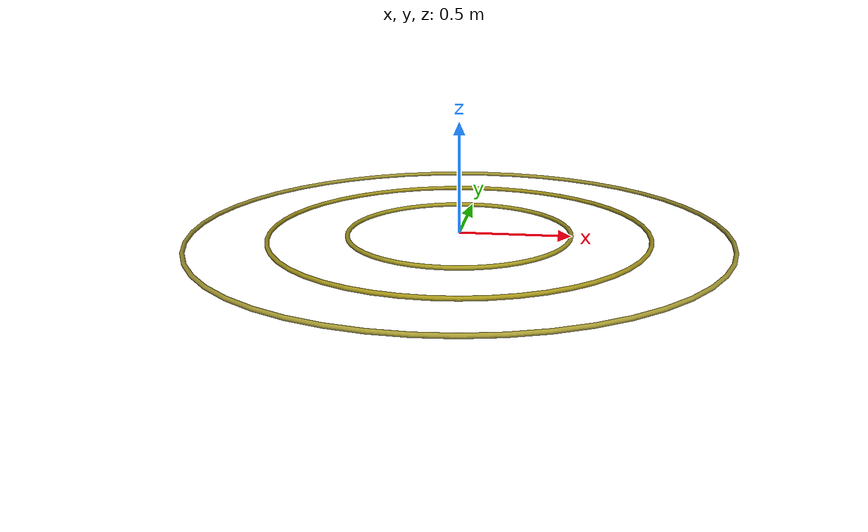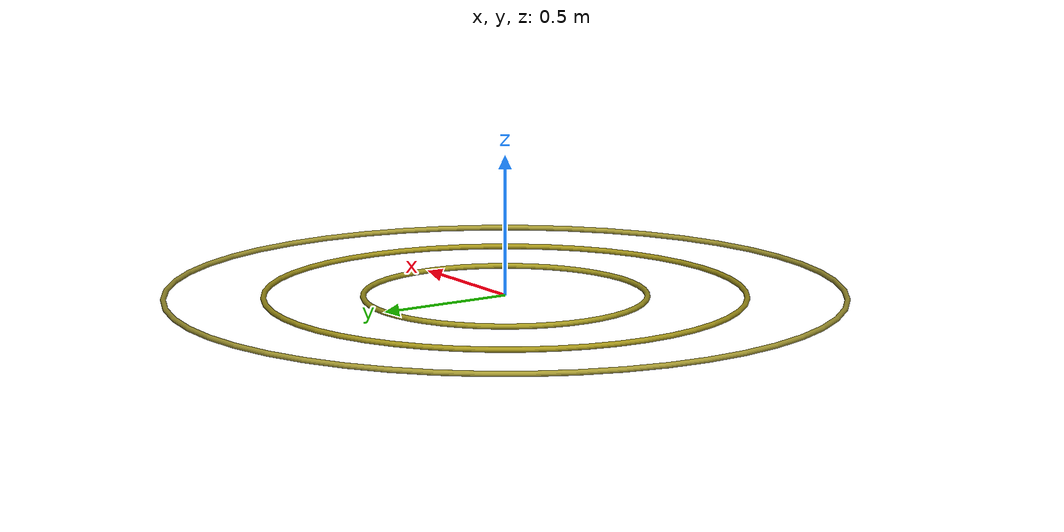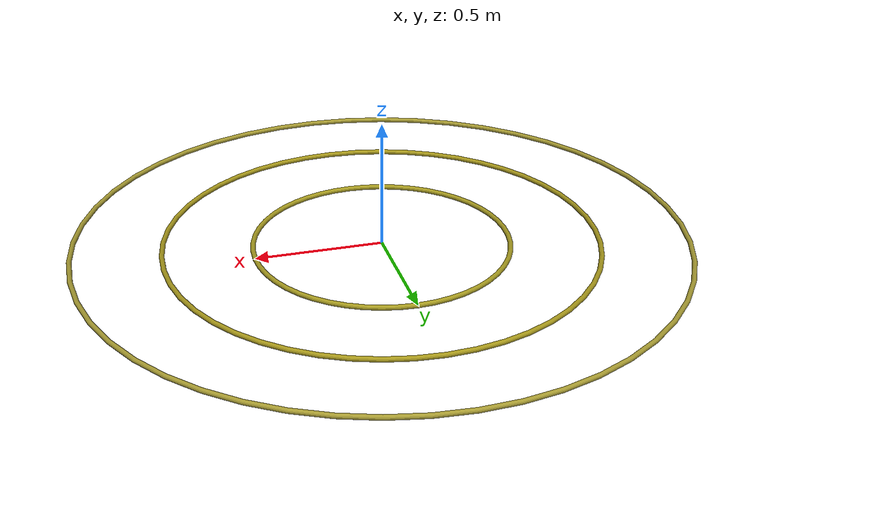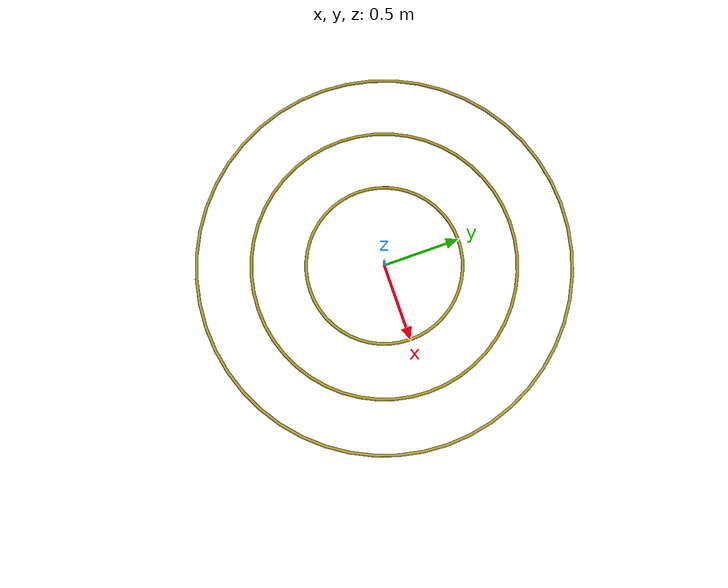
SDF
<?xml version="1.0"?>
<sdf version="1.5">
  <model name="circles">
    <static>false</static>
    <link name="circles">

    <inertial>
      <mass>0.1</mass>
      <inertia>
        <ixx>0</ixx>
        <ixy>0</ixy>
        <ixz>0</ixz>
        <iyy>0</iyy>
        <iyz>0</iyz>
        <izz>0</izz>
      </inertia>
    </inertial>

    <velocity_decay>
      <linear>0.00001</linear>
      <angular>0.00001</angular>
    </velocity_decay>

    <collision name='circles_collision'>
      <pose>0 0 0 0 0 0</pose>
      <geometry>
        <mesh>
          <uri>model://circles/circles.dae</uri>
          <scale>1 1 1</scale>
        </mesh>
      </geometry>
    </collision>

    <sensor name="contact" type="contact">
      <contact>
        <collision>circlescol</collision>
      </contact>
      <update_rate>50</update_rate>
      <plugin name='gazebo_ros_bumper_controller' filename="libgazebo_ros_bumper.so">
        <alwaysOn>true</alwaysOn>
        <bumperTopicName>contact_bumper</bumperTopicName>
      </plugin>
    </sensor>

    <visual name="circles_visual">
      <pose>0 0 0 0 0 0</pose>
      <geometry>
        <mesh>
          <uri>model://circles/circles.dae</uri>
          <scale>1 1 1</scale>
        </mesh>
      </geometry>
    </visual>
  </link>
  </model>
</sdf>
